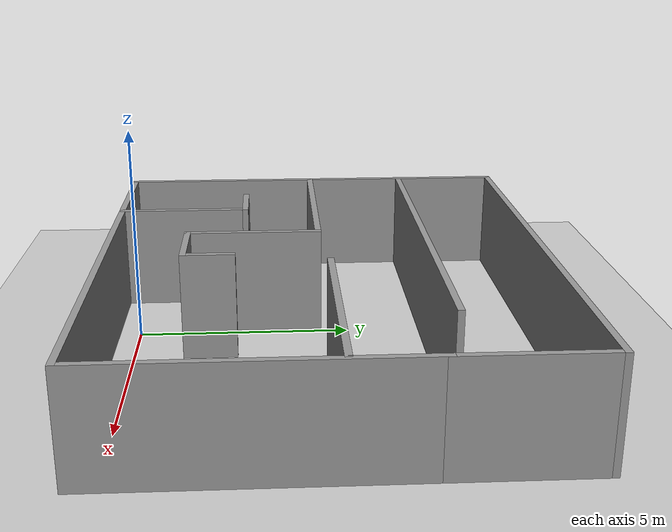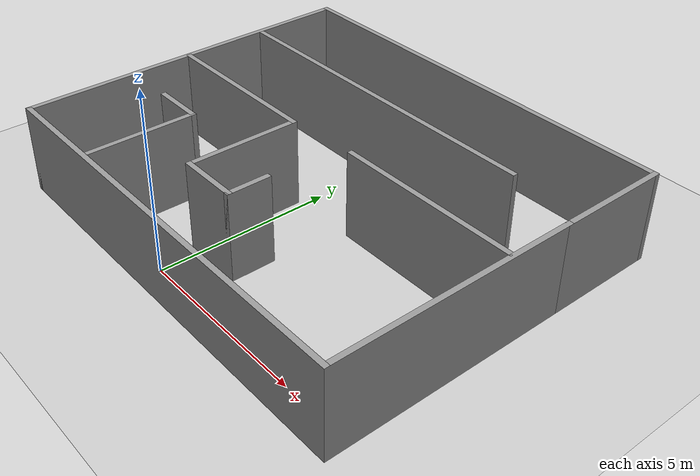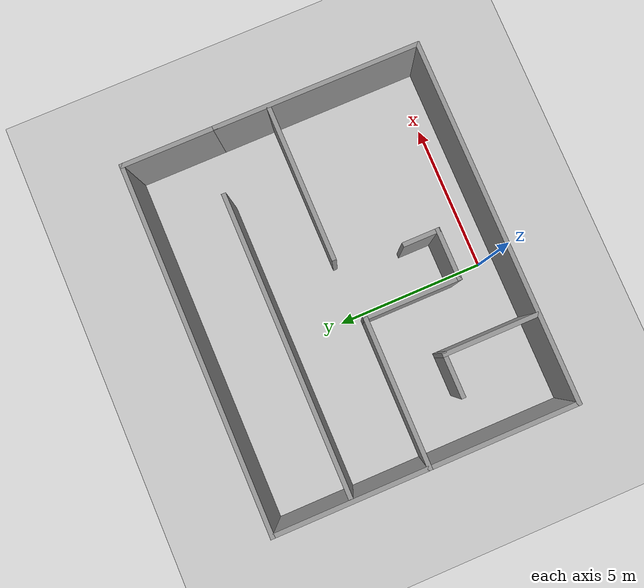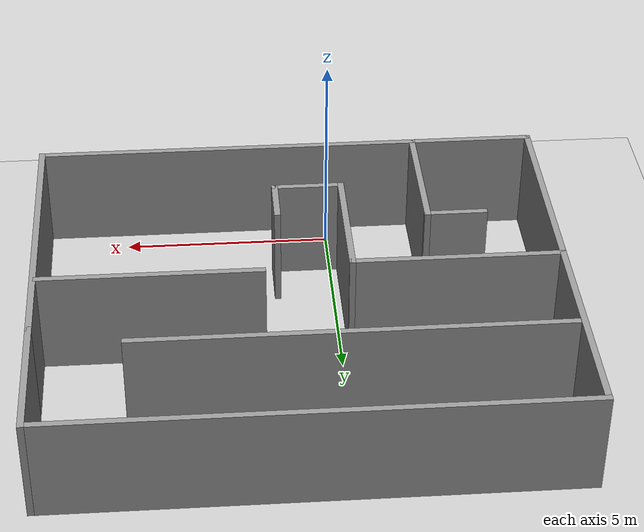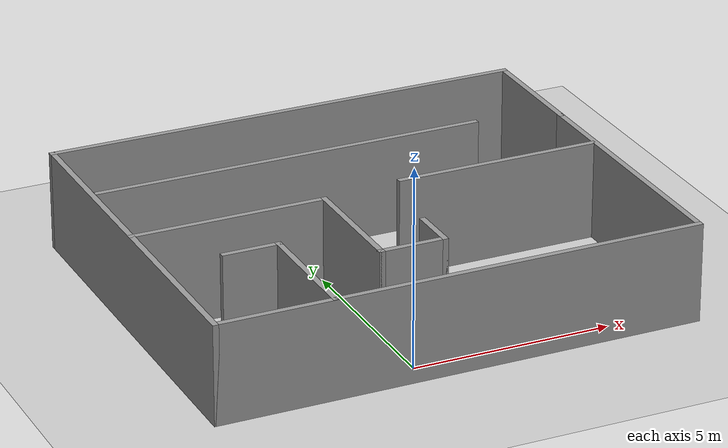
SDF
<sdf version="1.7">
 <world name="default">
  <light name="sun" type="directional">
   <pose>0 0 10 0 -0 0</pose>
   <diffuse>0.8 0.8 0.8 1</diffuse>
   <specular>0.2 0.2 0.2 1</specular>
   <attenuation>
    <range>1000</range>
    <constant>0.9</constant>
    <linear>0.01</linear>
    <quadratic>0.001</quadratic>
   </attenuation>
   <direction>-0.5 0.1 -0.9</direction>
   <spot><inner_angle>0</inner_angle><outer_angle>0</outer_angle><falloff>0</falloff></spot>
  </light>
  <model name="ground_plane">
   <static>1</static>
   <link name="link">
    <collision name="collision">
     <geometry><plane><normal>0 0 1</normal><size>100 100</size></plane></geometry>
     <surface>
      <contact><collide_bitmask>65535</collide_bitmask></contact>
      <friction><ode><mu>100</mu><mu2>50</mu2></ode></friction>
     </surface>
    </collision>
    <visual name="visual">
     <cast_shadows>0</cast_shadows>
     <geometry><plane><normal>0 0 1</normal><size>100 100</size></plane></geometry>
     <material>
      <script><uri>file://media/materials/scripts/gazebo.material</uri><name>Gazebo/Grey</name></script>
     </material>
    </visual>
   </link>
  </model>
  <gravity>0 0 -9.8</gravity>
  <magnetic_field>6e-06 2.3e-05 -4.2e-05</magnetic_field>
  <atmosphere type="adiabatic"/>
  <physics type="ode">
   <max_step_size>0.001</max_step_size>
   <real_time_factor>1</real_time_factor>
   <real_time_update_rate>1000</real_time_update_rate>
  </physics>
  <scene><ambient>0.4 0.4 0.4 1</ambient><background>0.7 0.7 0.7 1</background><shadows>1</shadows></scene>
  <spherical_coordinates>
   <surface_model>EARTH_WGS84</surface_model>
   <latitude_deg>0</latitude_deg>
   <longitude_deg>0</longitude_deg>
   <elevation>0</elevation>
   <heading_deg>0</heading_deg>
  </spherical_coordinates>
  <model name="room">
   <pose>0.9525 4.3925 0 0 -0 0</pose>
   <link name="Wall_0">
    <collision name="Wall_0_Collision">
     <geometry><box><size>12.25 0.15 2.5</size></box></geometry>
     <pose>0 0 1.25 0 -0 0</pose>
    </collision>
    <visual name="Wall_0_Visual">
     <pose>0 0 1.25 0 -0 0</pose>
     <geometry><box><size>12.25 0.15 2.5</size></box></geometry>
     <material>
      <script><uri>file://media/materials/scripts/gazebo.material</uri><name>Gazebo/Grey</name></script>
      <ambient>1 1 1 1</ambient>
     </material>
     <meta><layer>0</layer></meta>
    </visual>
    <pose>0 -4.975 0 0 -0 0</pose>
   </link>
   <link name="Wall_1">
    <collision name="Wall_1_Collision">
     <geometry><box><size>7 0.15 2.5</size></box></geometry>
     <pose>0 0 1.25 0 -0 0</pose>
    </collision>
    <visual name="Wall_1_Visual">
     <pose>0 0 1.25 0 -0 0</pose>
     <geometry><box><size>7 0.15 2.5</size></box></geometry>
     <material>
      <script><uri>file://media/materials/scripts/gazebo.material</uri><name>Gazebo/Grey</name></script>
      <ambient>1 1 1 1</ambient>
     </material>
     <meta><layer>0</layer></meta>
    </visual>
    <pose>6.05 -1.55 0 0 -0 1.5708</pose>
   </link>
   <link name="Wall_10">
    <collision name="Wall_10_Collision">
     <geometry><box><size>3.25 0.15 2.5</size></box></geometry>
     <pose>0 0 1.25 0 -0 0</pose>
    </collision>
    <visual name="Wall_10_Visual">
     <pose>0 0 1.25 0 -0 0</pose>
     <geometry><box><size>3.25 0.15 2.5</size></box></geometry>
     <material>
      <script><uri>file://media/materials/scripts/gazebo.material</uri><name>Gazebo/Grey</name></script>
      <ambient>1 1 1 1</ambient>
     </material>
     <meta><layer>0</layer></meta>
    </visual>
    <pose>-1.19981 -1.64191 0 0 -0 -1.5708</pose>
   </link>
   <link name="Wall_11">
    <collision name="Wall_11_Collision">
     <geometry><box><size>1.75 0.15 2.5</size></box></geometry>
     <pose>0 0 1.25 0 -0 0</pose>
    </collision>
    <visual name="Wall_11_Visual">
     <pose>0 0 1.25 0 -0 0</pose>
     <geometry><box><size>1.75 0.15 2.5</size></box></geometry>
     <material>
      <script><uri>file://media/materials/scripts/gazebo.material</uri><name>Gazebo/Grey</name></script>
      <ambient>1 1 1 1</ambient>
     </material>
     <meta><layer>0</layer></meta>
    </visual>
    <pose>-0.399814 -3.19191 0 0 -0 0</pose>
   </link>
   <link name="Wall_12">
    <collision name="Wall_12_Collision">
     <geometry><box><size>1.25 0.15 2.5</size></box></geometry>
     <pose>0 0 1.25 0 -0 0</pose>
    </collision>
    <visual name="Wall_12_Visual">
     <pose>0 0 1.25 0 -0 0</pose>
     <geometry><box><size>1.25 0.15 2.5</size></box></geometry>
     <material>
      <script><uri>file://media/materials/scripts/gazebo.material</uri><name>Gazebo/Grey</name></script>
      <ambient>1 1 1 1</ambient>
     </material>
     <meta><layer>0</layer></meta>
    </visual>
    <pose>0.400186 -2.64191 0 0 -0 1.5708</pose>
   </link>
   <link name="Wall_14">
    <collision name="Wall_14_Collision">
     <geometry><box><size>5.25 0.15 2.5</size></box></geometry>
     <pose>0 0 1.25 0 -0 0</pose>
    </collision>
    <visual name="Wall_14_Visual">
     <pose>0 0 1.25 0 -0 0</pose>
     <geometry><box><size>5.25 0.15 2.5</size></box></geometry>
     <material>
      <script><uri>file://media/materials/scripts/gazebo.material</uri><name>Gazebo/Grey</name></script>
      <ambient>1 1 1 1</ambient>
     </material>
     <meta><layer>0</layer></meta>
    </visual>
    <pose>3.41358 0.091631 0 0 -0 0</pose>
   </link>
   <link name="Wall_16">
    <collision name="Wall_16_Collision">
     <geometry><box><size>10 0.15 2.5</size></box></geometry>
     <pose>0 0 1.25 0 -0 0</pose>
    </collision>
    <visual name="Wall_16_Visual">
     <pose>0 0 1.25 0 -0 0</pose>
     <geometry><box><size>10 0.15 2.5</size></box></geometry>
     <material>
      <script><uri>file://media/materials/scripts/gazebo.material</uri><name>Gazebo/Grey</name></script>
      <ambient>1 1 1 1</ambient>
     </material>
     <meta><layer>0</layer></meta>
    </visual>
    <pose>-0.971863 2.41649 0 0 -0 0</pose>
   </link>
   <link name="Wall_2">
    <collision name="Wall_2_Collision">
     <geometry><box><size>3.25 0.15 2.5</size></box></geometry>
     <pose>0 0 1.25 0 -0 0</pose>
    </collision>
    <visual name="Wall_2_Visual">
     <pose>0 0 1.25 0 -0 0</pose>
     <geometry><box><size>3.25 0.15 2.5</size></box></geometry>
     <material>
      <script><uri>file://media/materials/scripts/gazebo.material</uri><name>Gazebo/Grey</name></script>
      <ambient>1 1 1 1</ambient>
     </material>
     <meta><layer>0</layer></meta>
    </visual>
    <pose>6.05 3.425 0 0 -0 1.5708</pose>
   </link>
   <link name="Wall_3">
    <collision name="Wall_3_Collision">
     <geometry><box><size>12.25 0.15 2.5</size></box></geometry>
     <pose>0 0 1.25 0 -0 0</pose>
    </collision>
    <visual name="Wall_3_Visual">
     <pose>0 0 1.25 0 -0 0</pose>
     <geometry><box><size>12.25 0.15 2.5</size></box></geometry>
     <material>
      <script><uri>file://media/materials/scripts/gazebo.material</uri><name>Gazebo/Grey</name></script>
      <ambient>1 1 1 1</ambient>
     </material>
     <meta><layer>0</layer></meta>
    </visual>
    <pose>0 4.975 0 0 -0 3.14159</pose>
   </link>
   <link name="Wall_4">
    <collision name="Wall_4_Collision">
     <geometry><box><size>10.1 0.15 2.5</size></box></geometry>
     <pose>0 0 1.25 0 -0 0</pose>
    </collision>
    <visual name="Wall_4_Visual">
     <pose>0 0 1.25 0 -0 0</pose>
     <geometry><box><size>10.1 0.15 2.5</size></box></geometry>
     <material>
      <script><uri>file://media/materials/scripts/gazebo.material</uri><name>Gazebo/Grey</name></script>
      <ambient>1 1 1 1</ambient>
     </material>
     <meta><layer>0</layer></meta>
    </visual>
    <pose>-6.05 -0 0 0 -0 -1.5708</pose>
   </link>
   <link name="Wall_6">
    <collision name="Wall_6_Collision">
     <geometry><box><size>3.25 0.15 2.5</size></box></geometry>
     <pose>0 0 1.25 0 -0 0</pose>
    </collision>
    <visual name="Wall_6_Visual">
     <pose>0 0 1.25 0 -0 0</pose>
     <geometry><box><size>3.25 0.15 2.5</size></box></geometry>
     <material>
      <script><uri>file://media/materials/scripts/gazebo.material</uri><name>Gazebo/Grey</name></script>
      <ambient>1 1 1 1</ambient>
     </material>
     <meta><layer>0</layer></meta>
    </visual>
    <pose>-3.14374 -3.40576 0 0 -0 1.5708</pose>
   </link>
   <link name="Wall_7">
    <collision name="Wall_7_Collision">
     <geometry><box><size>1.5 0.15 2.5</size></box></geometry>
     <pose>0 0 1.25 0 -0 0</pose>
    </collision>
    <visual name="Wall_7_Visual">
     <pose>0 0 1.25 0 -0 0</pose>
     <geometry><box><size>1.5 0.15 2.5</size></box></geometry>
     <material>
      <script><uri>file://media/materials/scripts/gazebo.material</uri><name>Gazebo/Grey</name></script>
      <ambient>1 1 1 1</ambient>
     </material>
     <meta><layer>0</layer></meta>
    </visual>
    <pose>-3.81874 -1.85576 0 0 -0 3.14159</pose>
   </link>
   <link name="Wall_9">
    <collision name="Wall_9_Collision">
     <geometry><box><size>5 0.15 2.5</size></box></geometry>
     <pose>0 0 1.25 0 -0 0</pose>
    </collision>
    <visual name="Wall_9_Visual">
     <pose>0 0 1.25 0 -0 0</pose>
     <geometry><box><size>5 0.15 2.5</size></box></geometry>
     <material>
      <script><uri>file://media/materials/scripts/gazebo.material</uri><name>Gazebo/Grey</name></script>
      <ambient>1 1 1 1</ambient>
     </material>
     <meta><layer>0</layer></meta>
    </visual>
    <pose>-3.62481 -0.09191 0 0 -0 0</pose>
   </link>
   <static>1</static>
  </model>
 </world>
</sdf>
